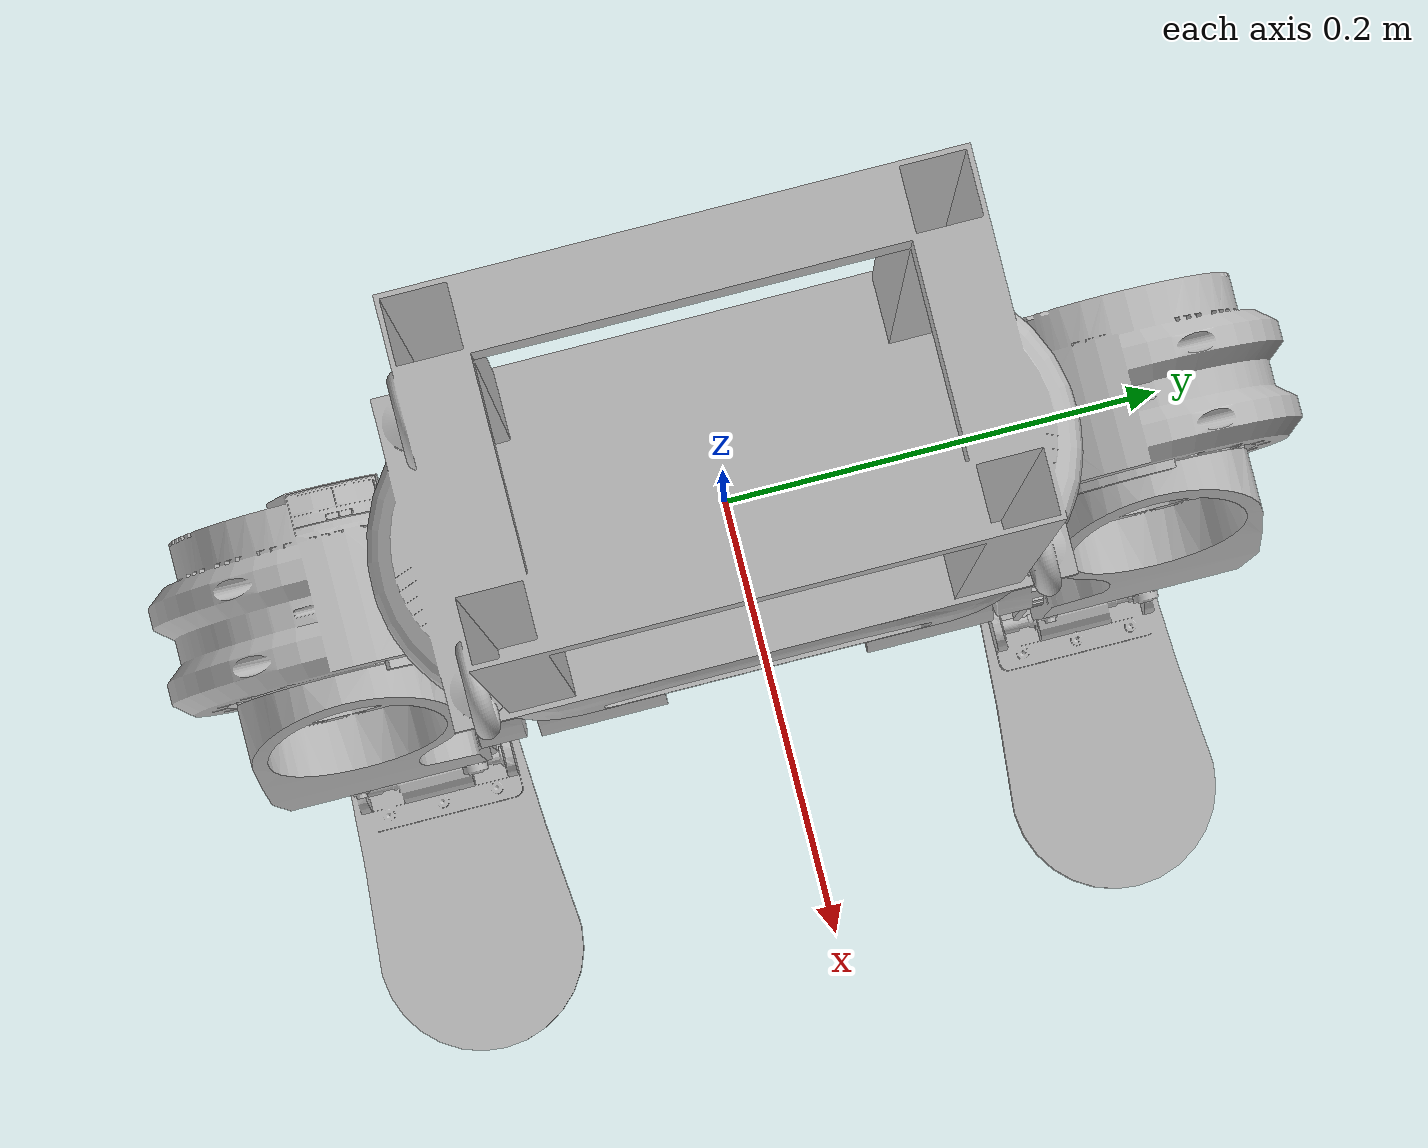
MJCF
<mujoco model="tahiti_c1">
  <compiler angle="radian" meshdir="./"/>

  <asset>
    <mesh name="base_link" content_type="model/stl" file="meshes/base_link.STL"/>
    <mesh name="left_hip_yaw_link" content_type="model/stl" file="meshes/left_hip_yaw_link.STL"/>
    <mesh name="left_hip_pitch_link" content_type="model/stl" file="meshes/left_hip_pitch_link.STL"/>
    <mesh name="left_hip_roll_link" content_type="model/stl" file="meshes/left_hip_roll_link.STL"/>
    <mesh name="left_knee_link" content_type="model/stl" file="meshes/left_knee_link.STL"/>
    <mesh name="left_ankle_pitch_link" content_type="model/stl" file="meshes/left_ankle_pitch_link.STL"/>
    <mesh name="left_ankle_roll_link" content_type="model/stl" file="meshes/left_ankle_roll_link.STL"/>
    <mesh name="right_hip_yaw_link" content_type="model/stl" file="meshes/right_hip_yaw_link.STL"/>
    <mesh name="right_hip_pitch_link" content_type="model/stl" file="meshes/right_hip_pitch_link.STL"/>
    <mesh name="right_hip_roll_link" content_type="model/stl" file="meshes/right_hip_roll_link.STL"/>
    <mesh name="right_knee_link" content_type="model/stl" file="meshes/right_knee_link.STL"/>
    <mesh name="right_ankle_pitch_link" content_type="model/stl" file="meshes/right_ankle_pitch_link.STL"/>
    <mesh name="right_ankle_roll_link" content_type="model/stl" file="meshes/right_ankle_roll_link.STL"/>
    <mesh name="imu_in_pelvis" content_type="model/stl" file="meshes/imu_in_pelvis.STL"/>
  </asset>

  <worldbody>
    <geom type="mesh" contype="0" conaffinity="0" group="1" density="0" rgba="0.75294 0.75294 0.75294 1" mesh="base_link"/>
    <geom type="mesh" rgba="0.75294 0.75294 0.75294 1" mesh="base_link"/>
    <geom pos="0.07 0 0.04" quat="1 0 0 0" type="mesh" contype="0" conaffinity="0" group="1" density="0" rgba="1 1 1 1" mesh="imu_in_pelvis"/>
    <geom pos="0.07 0 0.04" quat="1 0 0 0" type="mesh" rgba="1 1 1 1" mesh="imu_in_pelvis"/>
    <body name="left_hip_yaw_link" pos="0 0.0875 -0.0005">
      <inertial pos="-0.000480857 -0.0170328 -0.0762664" quat="0.511816 0.483767 0.513695 0.490033" mass="3.79791" diaginertia="0.00759408 0.00647959 0.00423345"/>
      <joint name="left_hip_yaw_joint" pos="0 0 0" axis="0 0 1" range="-0.4363 0.4363" actuatorfrcrange="-320 320"/>
      <geom type="mesh" contype="0" conaffinity="0" group="1" density="0" rgba="0.752941 0.752941 0.752941 1" mesh="left_hip_yaw_link"/>
      <geom type="mesh" rgba="0.752941 0.752941 0.752941 1" mesh="left_hip_yaw_link"/>
      <body name="left_hip_pitch_link" pos="0 0.0205 -0.083">
        <inertial pos="-0.00827435 0.0764942 -0.000349449" quat="0.999885 -0.00585724 0.0036797 -0.0135221" mass="3.78303" diaginertia="0.00759109 0.00646098 0.00423682"/>
        <joint name="left_hip_pitch_joint" pos="0 0 0" axis="0 1 0" range="-2.0071 2.1817" actuatorfrcrange="-320 320"/>
        <geom type="mesh" contype="0" conaffinity="0" group="1" density="0" rgba="0.752941 0.752941 0.752941 1" mesh="left_hip_pitch_link"/>
        <geom type="mesh" rgba="0.752941 0.752941 0.752941 1" mesh="left_hip_pitch_link"/>
        <body name="left_hip_roll_link" pos="0.0305 0.083 0">
          <inertial pos="-0.0146308 -0.0120145 -0.202853" quat="0.703724 0.035256 0.0222276 0.70925" mass="6.83831" diaginertia="0.0659688 0.060645 0.0103318"/>
          <joint name="left_hip_roll_joint" pos="0 0 0" axis="1 0 0" range="-0.2618 2.7925" actuatorfrcrange="-320 320"/>
          <geom type="mesh" contype="0" conaffinity="0" group="1" density="0" rgba="0.752941 0.752941 0.752941 1" mesh="left_hip_roll_link"/>
          <geom type="mesh" rgba="0.752941 0.752941 0.752941 1" mesh="left_hip_roll_link"/>
          <body name="left_knee_link" pos="-0.0225 0.002 -0.402">
            <inertial pos="0.0087491 -0.0020942 -0.145" quat="0.999892 0.00161819 0.0144559 0.00211959" mass="4.3581" diaginertia="0.0333889 0.0323823 0.00367877"/>
            <joint name="left_knee_joint" pos="0 0 0" axis="0 1 0" range="0 2.1817" actuatorfrcrange="-320 320"/>
            <geom type="mesh" contype="0" conaffinity="0" group="1" density="0" rgba="0.75294 0.75294 0.75294 1" mesh="left_knee_link"/>
            <geom type="mesh" rgba="0.75294 0.75294 0.75294 1" mesh="left_knee_link"/>
            <body name="left_ankle_pitch_link" pos="-0.00082725 -0.002 -0.40245">
              <inertial pos="-0.00295639 3.52798e-09 -0.0206668" quat="0.546647 0.448527 0.448527 0.546647" mass="0.139926" diaginertia="4.92356e-05 4.60857e-05 3.72092e-05"/>
              <joint name="left_ankle_pitch_joint" pos="0 0 0" axis="0 -1 0" range="-0.5236 0.8727" actuatorfrcrange="-60 60"/>
              <geom type="mesh" contype="0" conaffinity="0" group="1" density="0" rgba="0.866667 0.909804 1 1" mesh="left_ankle_pitch_link"/>
              <geom type="mesh" rgba="0.866667 0.909804 1 1" mesh="left_ankle_pitch_link"/>
              <body name="left_ankle_roll_link" pos="0.0225 0 -0.025">
                <inertial pos="0.0302575 0.000330492 -0.0126286" quat="0 0.717912 0 0.696133" mass="1.16685" diaginertia="0.00628554 0.00550313 0.00100163"/>
                <joint name="left_ankle_roll_joint" pos="0 0 0" axis="-1 0 0" range="-0.1745 0.1745" actuatorfrcrange="-60 60"/>
                <geom type="mesh" contype="0" conaffinity="0" group="1" density="0" rgba="0.752941 0.752941 0.752941 1" mesh="left_ankle_roll_link"/>
                <geom type="mesh" rgba="0.752941 0.752941 0.752941 1" mesh="left_ankle_roll_link"/>
              </body>
            </body>
          </body>
        </body>
      </body>
    </body>
    <body name="right_hip_yaw_link" pos="0 -0.0875 -0.0005">
      <inertial pos="-0.000293345 0.0170328 -0.0762844" quat="0.489545 0.513981 0.490381 0.505663" mass="3.79791" diaginertia="0.00759282 0.00646879 0.0042455"/>
      <joint name="right_hip_yaw_joint" pos="0 0 0" axis="0 0 1" range="-0.4363 0.4363" actuatorfrcrange="-320 320"/>
      <geom type="mesh" contype="0" conaffinity="0" group="1" density="0" rgba="0.752941 0.752941 0.752941 1" mesh="right_hip_yaw_link"/>
      <geom type="mesh" rgba="0.752941 0.752941 0.752941 1" mesh="right_hip_yaw_link"/>
      <body name="right_hip_pitch_link" pos="0 -0.0205 -0.083">
        <inertial pos="-0.00827435 -0.0764942 0.000349449" quat="0.999885 -0.00585724 -0.0036797 0.0135221" mass="3.78303" diaginertia="0.00759109 0.00646098 0.00423682"/>
        <joint name="right_hip_pitch_joint" pos="0 0 0" axis="0 1 0" range="-2.0071 2.1817" actuatorfrcrange="-320 320"/>
        <geom type="mesh" contype="0" conaffinity="0" group="1" density="0" rgba="0.752941 0.752941 0.752941 1" mesh="right_hip_pitch_link"/>
        <geom type="mesh" rgba="0.752941 0.752941 0.752941 1" mesh="right_hip_pitch_link"/>
        <body name="right_hip_roll_link" pos="0.0305 -0.083 0">
          <inertial pos="-0.0145752 0.0120178 -0.202939" quat="0.709266 0.0221833 0.0352476 0.70371" mass="6.8383" diaginertia="0.0659688 0.0606479 0.0103287"/>
          <joint name="right_hip_roll_joint" pos="0 0 0" axis="1 0 0" range="-2.7925 0.2618" actuatorfrcrange="-320 320"/>
          <geom type="mesh" contype="0" conaffinity="0" group="1" density="0" rgba="0.752941 0.752941 0.752941 1" mesh="right_hip_roll_link"/>
          <geom type="mesh" rgba="0.752941 0.752941 0.752941 1" mesh="right_hip_roll_link"/>
          <body name="right_knee_link" pos="-0.0225 0 -0.402">
            <inertial pos="0.0087573 0.00020405 -0.14432" quat="0.99989 -0.00176249 0.0144761 0.00254846" mass="4.3581" diaginertia="0.033471 0.0324623 0.00368088"/>
            <joint name="right_knee_joint" pos="0 0 0" axis="0 1 0" range="0 2.1817" actuatorfrcrange="-320 320"/>
            <geom type="mesh" contype="0" conaffinity="0" group="1" density="0" rgba="0.75294 0.75294 0.75294 1" mesh="right_knee_link"/>
            <geom type="mesh" rgba="0.75294 0.75294 0.75294 1" mesh="right_knee_link"/>
            <body name="right_ankle_pitch_link" pos="-0.00082725 0 -0.40245">
              <inertial pos="-0.00295639 3.52798e-09 -0.0206668" quat="0.546647 0.448527 0.448527 0.546647" mass="0.139926" diaginertia="4.92356e-05 4.60857e-05 3.72092e-05"/>
              <joint name="right_ankle_pitch_joint" pos="0 0 0" axis="0 -1 0" range="-0.5236 0.8727" actuatorfrcrange="-60 60"/>
              <geom type="mesh" contype="0" conaffinity="0" group="1" density="0" rgba="0.866667 0.909804 1 1" mesh="right_ankle_pitch_link"/>
              <geom type="mesh" rgba="0.866667 0.909804 1 1" mesh="right_ankle_pitch_link"/>
              <body name="right_ankle_roll_link" pos="0.0225 0 -0.025">
                <inertial pos="0.0302575 0.000330492 -0.0126286" quat="0 0.717912 0 0.696133" mass="1.16685" diaginertia="0.00628554 0.00550313 0.00100163"/>
                <joint name="right_ankle_roll_joint" pos="0 0 0" axis="-1 0 0" range="-0.1745 0.1745" actuatorfrcrange="-60 60"/>
                <geom type="mesh" contype="0" conaffinity="0" group="1" density="0" rgba="0.752941 0.752941 0.752941 1" mesh="right_ankle_roll_link"/>
                <geom type="mesh" rgba="0.752941 0.752941 0.752941 1" mesh="right_ankle_roll_link"/>
              </body>
            </body>
          </body>
        </body>
      </body>
    </body>
  </worldbody>
</mujoco>
